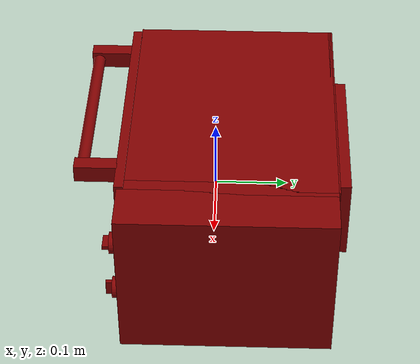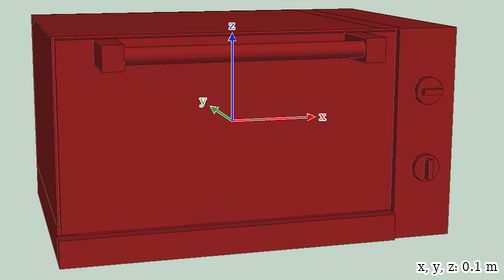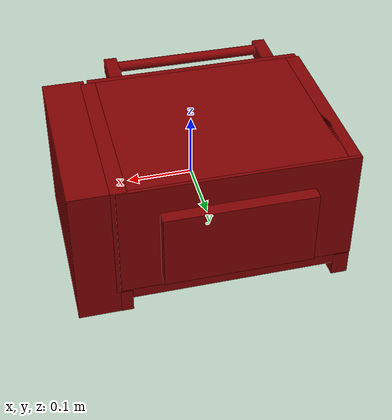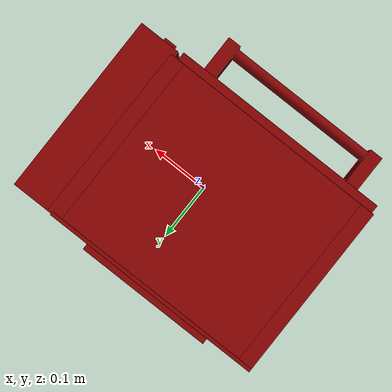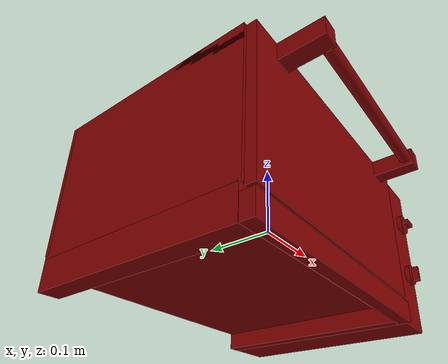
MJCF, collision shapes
<?xml version='1.0' encoding='UTF-8'?>
<mujoco model="model">
  <option timestep="0.002" gravity="0.0 0.0 -9.81"/>
  <compiler angle="radian"/>
  <asset>
    <mesh file="visuals/Body001.obj" name="Body001_vis"/>
    <mesh file="visuals/Door001.obj" name="Door001_vis"/>
    <mesh file="visuals/Door001_Clear.obj" name="Door001_Clear_vis"/>
    <mesh file="visuals/Handle001.obj" name="Handle001_vis"/>
    <mesh file="visuals/Knob001.obj" name="Knob001_vis"/>
    <mesh file="visuals/Knob002.obj" name="Knob002_vis"/>
    <mesh file="visuals/Shelf001.obj" name="Shelf001_vis"/>
    <texture file="visuals/T_BC001.png" name="Body001_material" type="2d"/>
    <material name="Body001_material" rgba="1 1 1 1.0" texture="Body001_material" shininess="1" specular="1"/>
    <texture file="visuals/T_BC001.png" name="Door001_material" type="2d"/>
    <material name="Door001_material" rgba="1 1 1 1.0" texture="Door001_material" shininess="0.141421377658844" specular="0.3103448502657381"/>
    <material name="Door001_Clear_material" rgba="0.032748669385910034 0.032748669385910034 0.032748669385910034 0.75" shininess="0.141421377658844" specular="0.3103448502657381"/>
    <texture file="visuals/T_BC001.png" name="Handle001_material" type="2d"/>
    <material name="Handle001_material" rgba="1 1 1 1.0" texture="Handle001_material" shininess="0.141421377658844" specular="0.3103448502657381"/>
    <texture file="visuals/T_BC001.png" name="Knob001_material" type="2d"/>
    <material name="Knob001_material" rgba="1 1 1 1.0" texture="Knob001_material" shininess="1" specular="1"/>
    <texture file="visuals/T_BC001.png" name="Knob002_material" type="2d"/>
    <material name="Knob002_material" rgba="1 1 1 1.0" texture="Knob002_material" shininess="1" specular="1"/>
    <texture file="visuals/T_BC001.png" name="Shelf001_material" type="2d"/>
    <material name="Shelf001_material" rgba="1 1 1 1.0" texture="Shelf001_material" shininess="10" specular="10"/>
  </asset>
  <default>
    <default class="visual">
      <geom conaffinity="0" contype="0" group="1" type="mesh"/>
    </default>
    <default class="collision">
      <geom group="0" rgba="0.5 0 0 0.5"/>
    </default>
    <default class="spawn">
      <geom group="0" rgba="1 1 1 0.5" contype="0" conaffinity="0"/>
      <site group="0" rgba="1 1 1 0.5"/>
    </default>
    <default class="region">
      <geom group="1" conaffinity="0" contype="0" rgba="0 1 0 0"/>
    </default>
  </default>
  <worldbody>
    <body>
      <body name="object">
        <geom mesh="Body001_vis" type="mesh" solimp="0.998 0.998 0.001" solref="0.001 1" friction="0.95 0.3 0.1" class="visual" material="Body001_material"/>
        <geom class="collision" type="box" pos="-0.19915375113487244 0.023692751303315163 0.019506996497511864" size="0.011346306651830673 0.13945896923542023 0.0934930220246315" quat="1.0 0.0 0.0 0.0" density="1000.0"/>
        <geom class="collision" type="box" pos="-0.023264974355697632 0.023692751303315163 -0.07780774682760239" size="0.16671471297740936 0.13945895433425903 0.011364622972905636" quat="1.0 0.0 0.0 0.0" density="1000.0"/>
        <geom class="collision" type="box" pos="-0.03292854130268097 0.16241781413555145 0.021472088992595673" size="0.17757153511047363 0.002849905053153634 0.09152796864509583" quat="1.0 0.0 0.0 0.0" density="1000.0"/>
        <geom class="collision" type="box" pos="0.1396062970161438 0.023692751303315163 0.019507044926285744" size="0.011799996718764305 0.13945890963077545 0.09349304437637329" quat="1.0 0.0 0.0 0.0" density="1000.0"/>
        <geom class="collision" type="box" pos="-0.03292854130268097 0.023692751303315163 0.10178637504577637" size="0.17757150530815125 0.13945889472961426 0.011213671416044235" quat="1.0 0.0 0.0 0.0" density="1000.0"/>
        <geom class="collision" type="box" pos="-0.030011050403118134 0.17500576376914978 0.008379187434911728" size="0.11408711969852448 0.009935657493770123 0.060446981340646744" quat="1.0 0.0 0.0 0.0" density="1000.0"/>
        <geom class="collision" type="box" pos="0.17786118388175964 0.01931707188487053 3.119930624961853e-08" size="0.032638855278491974 0.14383453130722046 0.11300002783536911" quat="1.0 0.0 0.0 0.0" density="1000.0"/>
        <geom class="collision" type="box" pos="-0.032928597182035446 -0.12176620215177536 -0.09873336553573608" size="0.17757150530815125 0.008292344398796558 0.014266670681536198" quat="1.0 0.0 0.0 0.0" density="1000.0"/>
        <geom class="collision" type="box" pos="-0.1976035237312317 0.025271344929933548 -0.09316490590572357" size="0.138315811753273 0.012896534986793995 0.019835161045193672" quat="0.7071068286895752 0.0 0.0 0.7071067094802856" density="1000.0"/>
        <geom class="collision" type="box" pos="0.1369469165802002 0.025271344929933548 -0.09357748925685883" size="0.138315811753273 0.009070738218724728 0.01942254789173603" quat="0.7071068286895752 0.0 0.0 0.7071067094802856" density="1000.0"/>
        <geom class="collision" type="box" pos="-0.186309814453125 0.023692749440670013 0.02976948767900467" size="0.004095414653420448 0.11066911369562149 0.013503814116120338" quat="1.0 0.0 0.0 0.0" density="1000.0"/>
        <geom class="collision" type="box" pos="-0.186309814453125 0.023692749440670013 -0.010365255177021027" size="0.004095414653420448 0.11066911369562149 0.013503814116120338" quat="1.0 0.0 0.0 0.0" density="1000.0"/>
        <geom class="collision" type="box" pos="0.12682807445526123 0.023692749440670013 0.02976948767900467" size="0.004095414653420448 0.11066911369562149 0.013503814116120338" quat="1.0 0.0 0.0 0.0" density="1000.0"/>
        <geom class="collision" type="box" pos="0.12682807445526123 0.023692749440670013 -0.010365255177021027" size="0.004095414653420448 0.11066911369562149 0.013503814116120338" quat="1.0 0.0 0.0 0.0" density="1000.0"/>
        <body name="Door001">
          <joint axis="1.0 0.0 0.0" pos="-0.034499987959861755 -0.1284104287624359 -0.08070763945579529" limited="true" name="Door001_joint" range="0.0 1.5707963267948966" type="hinge" damping="1" frictionloss="1" armature=".01" stiffness="0.05"/>
          <geom mesh="Door001_vis" type="mesh" solimp="0.998 0.998 0.001" solref="0.001 1" friction="0.95 0.3 0.1" class="visual" material="Door001_material"/>
          <geom class="collision" type="box" pos="-0.03427824005484581 -0.12261099368333817 0.01597590744495392" size="0.17340099811553955 0.0063090454787015915 0.09479888528585434" quat="1.0 0.0 0.0 0.0" density="1000.0"/>
          <body name="Door001_Clear">
            <geom mesh="Door001_Clear_vis" type="mesh" solimp="0.998 0.998 0.001" solref="0.001 1" friction="0.95 0.3 0.1" class="visual" material="Door001_Clear_material"/>
            <geom class="collision" type="box" pos="-0.03462637588381767 -0.12344959378242493 0.016422679647803307" size="0.15032900869846344 0.0017526516458019614 0.07011965662240982" quat="1.0 0.0 0.0 0.0" density="1000.0"/>
          </body>
          <body name="Handle001">
            <geom mesh="Handle001_vis" type="mesh" solimp="0.998 0.998 0.001" solref="0.001 1" friction="0.95 0.3 0.1" class="visual" material="Handle001_material"/>
            <geom class="collision" type="box" pos="-0.1616303026676178 -0.15656162798404694 0.09874646365642548" size="0.010255392640829086 0.028609011322259903 0.012028306722640991" quat="1.0 0.0 0.0 0.0" density="1000.0"/>
            <geom class="collision" type="box" pos="0.09226434677839279 -0.15656162798404694 0.09874646365642548" size="0.010255392640829086 0.028609009459614754 0.012028305791318417" quat="1.0 0.0 0.0 0.0" density="1000.0"/>
            <geom class="collision" type="cylinder" pos="-0.03375975787639618 -0.17494115233421326 0.09922613203525543" size="0.008183791302144527 0.11854784935712814" quat="0.7071068286895752 0.0 -0.7071067690849304 0.0" density="1000.0"/>
          </body>
        </body>
        <body name="Knob001">
          <joint axis="0.0 1.0 0.0" pos="0.17749997973442078 -0.13410982489585876 0.04776974022388458" limited="true" name="Knob001_joint" range="0.0 5.323254218582705" type="hinge" damping="0.05" armature="0.001"/>
          <geom mesh="Knob001_vis" type="mesh" solimp="0.998 0.998 0.001" solref="0.001 1" friction="0.95 0.3 0.1" class="visual" material="Knob001_material"/>
          <geom class="collision" type="cylinder" pos="0.17749997973442078 -0.13022786378860474 0.04776974022388458" size="0.014455029740929604 0.003352796658873558" quat="0.7071068286895752 0.7071067690849304 0.0 0.0" density="1000.0"/>
          <geom class="collision" type="box" pos="0.17749997973442078 -0.1376115083694458 0.04776974022388458" size="0.010511142201721668 0.004862803965806961 0.002875745762139559" quat="1.0 0.0 0.0 0.0" density="1000.0"/>
        </body>
        <body name="Knob002">
          <joint axis="0.0 1.0 0.0" pos="0.17749997973442078 -0.13413533568382263 -0.03509907424449921" limited="true" name="Knob002_joint" range="0.0 4.537856055185257" type="hinge" damping="0.05" armature="0.001"/>
          <geom mesh="Knob002_vis" type="mesh" solimp="0.998 0.998 0.001" solref="0.001 1" friction="0.95 0.3 0.1" class="visual" material="Knob002_material"/>
          <geom class="collision" type="cylinder" pos="0.17749997973442078 -0.13024592399597168 -0.03509907424449921" size="0.014455029740929604 0.003352796658873558" quat="0.7071068286895752 0.7071067690849304 0.0 0.0" density="1000.0"/>
          <geom class="collision" type="box" pos="0.17749997973442078 -0.13762956857681274 -0.03509907424449921" size="0.010511142201721668 0.004862803965806961 0.002875745762139559" quat="0.7071068286895752 -4.750302551315144e-08 0.7071067094802856 4.7503014855010406e-08" density="1000.0"/>
        </body>
        <body name="Shelf001">
          <joint axis="0.0 -1.0 0.0" pos="-0.029804488644003868 0.027116667479276657 0.00047825463116168976" limited="true" name="Shelf001_joint" range="0.0 0.2" type="slide" damping="1" frictionloss="1" armature=".01" stiffness="0.05"/>
          <geom mesh="Shelf001_vis" type="mesh" solimp="0.998 0.998 0.001" solref="0.001 1" friction="0.95 0.3 0.1" class="visual" material="Shelf001_material"/>
          <geom class="collision" type="box" pos="-0.03072410449385643 0.02707163244485855 -0.006946139968931675" size="0.13582004606723785 0.1287454217672348 0.003292788052931428" quat="1.0 0.0 0.0 0.0" density="1000.0"/>
          <geom class="collision" type="box" pos="0.11883842945098877 0.027066843584179878 0.009048592299222946" size="0.007618641015142202 0.12887655198574066 0.002635304583236575" quat="1.0 0.0 0.0 0.0" density="1000.0"/>
          <geom class="collision" type="box" pos="0.11046212166547775 0.027066843584179878 0.0004183817654848099" size="0.01061615813523531 0.12887655198574066 0.0026352968998253345" quat="0.8631649017333984 -7.031371040966405e-08 -0.5049221515655518 -4.113108786896191e-08" density="1000.0"/>
          <geom class="collision" type="box" pos="-0.16996705532073975 0.02706684172153473 0.00041838083416223526" size="0.01061615813523531 0.12887655198574066 0.0026352968998253345" quat="2.709616353513411e-07 0.8631649017333984 1.5850329759814485e-07 -0.5049221515655518" density="1000.0"/>
          <geom class="collision" type="box" pos="-0.17815768718719482 0.02706684172153473 0.009048592299222946" size="0.007618641015142202 0.12887655198574066 0.002635364653542638" quat="1.0 0.0 0.0 0.0" density="1000.0"/>
        </body>
        <geom class="region" name="reg_int" type="box" pos="-0.030440330505371094 0.02490226924419403 0.01190822571516037" size="0.1577332615852356 0.1350083351135254 0.07862193137407303"/>
        <geom class="region" name="reg_main" type="box" pos="0.0 0.02744145691394806 0.0" size="0.2105000615119934 0.1574999988079071 0.1130000501871109"/>
      </body>
    </body>
  </worldbody>
  <actuator>
    <motor name="Door001_joint_actuator" joint="Door001_joint" gear="30"/>
    <motor name="Knob001_joint_actuator" joint="Knob001_joint" gear="10"/>
    <motor name="Knob002_joint_actuator" joint="Knob002_joint" gear="10"/>
    <motor name="Shelf001_joint_actuator" joint="Shelf001_joint" gear="10"/>
  </actuator>
</mujoco>
